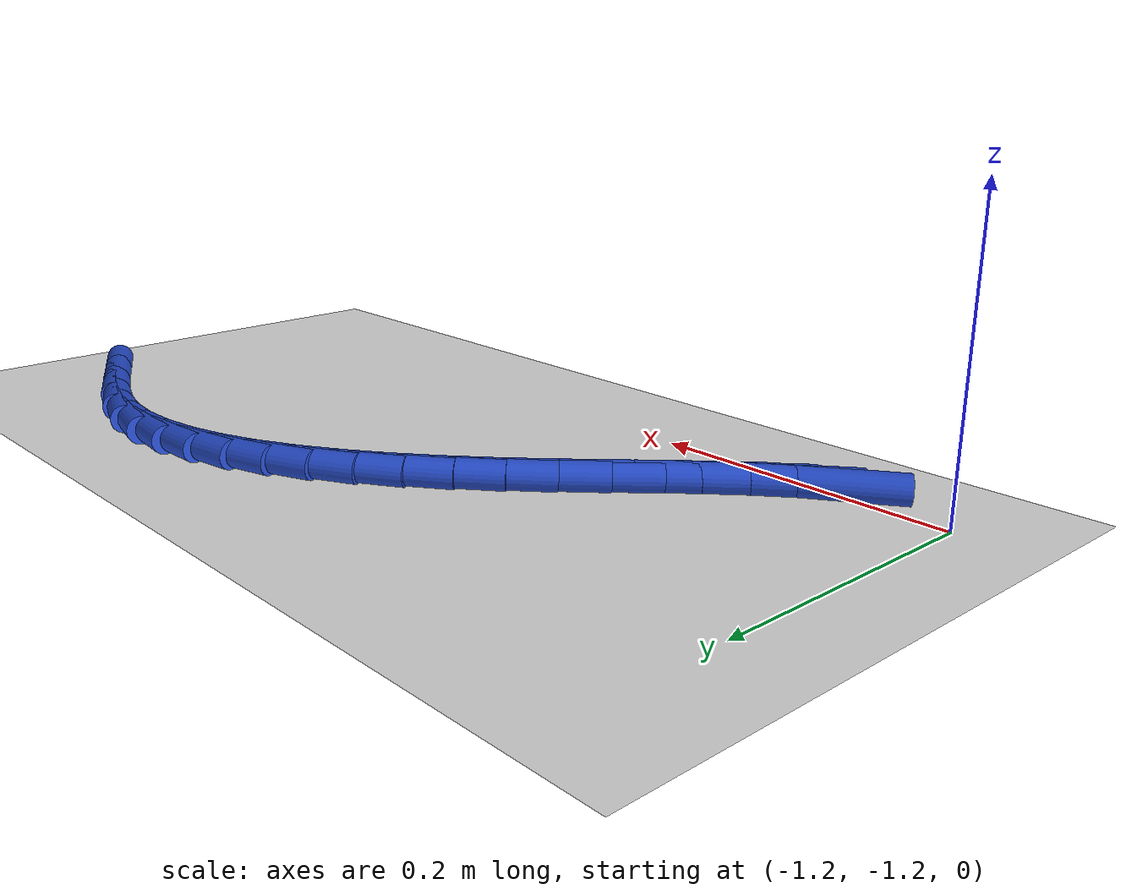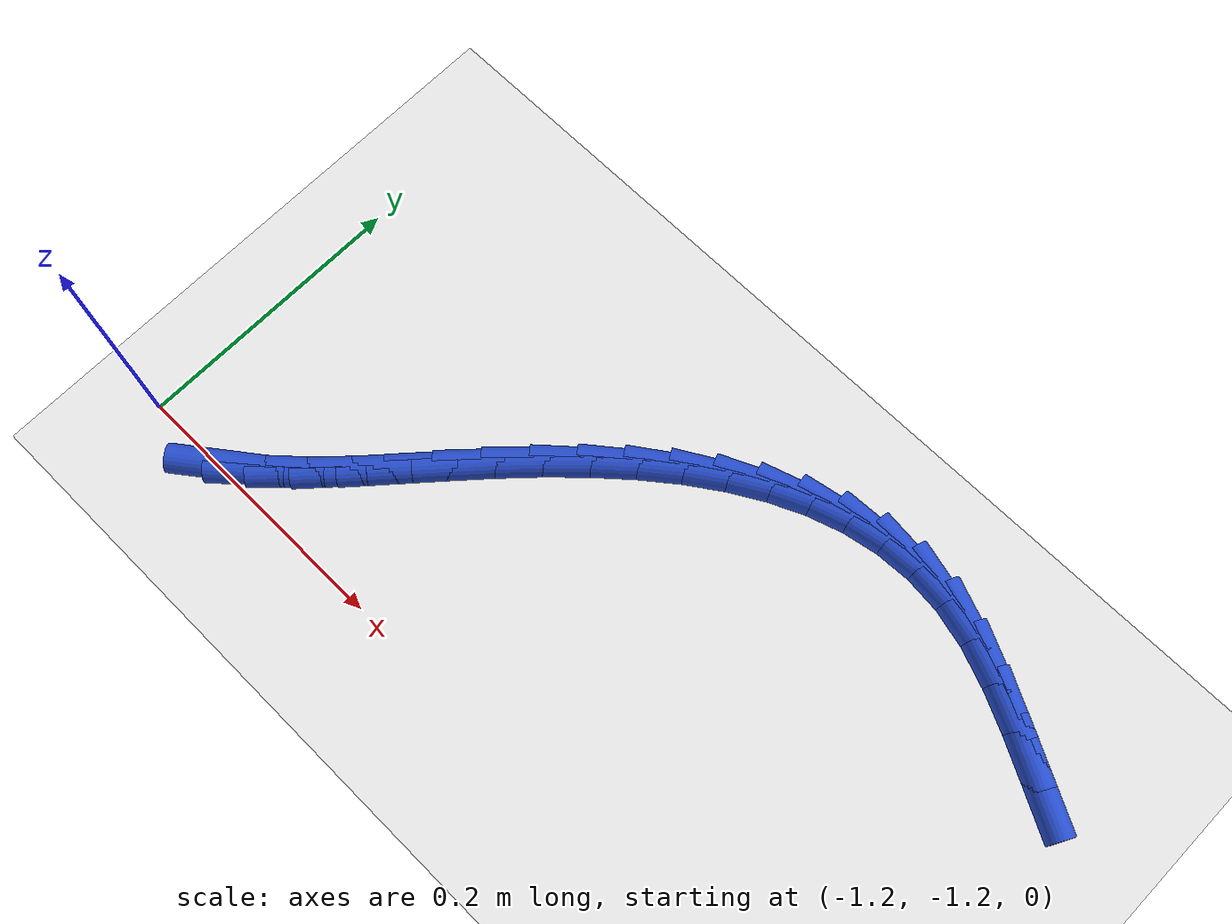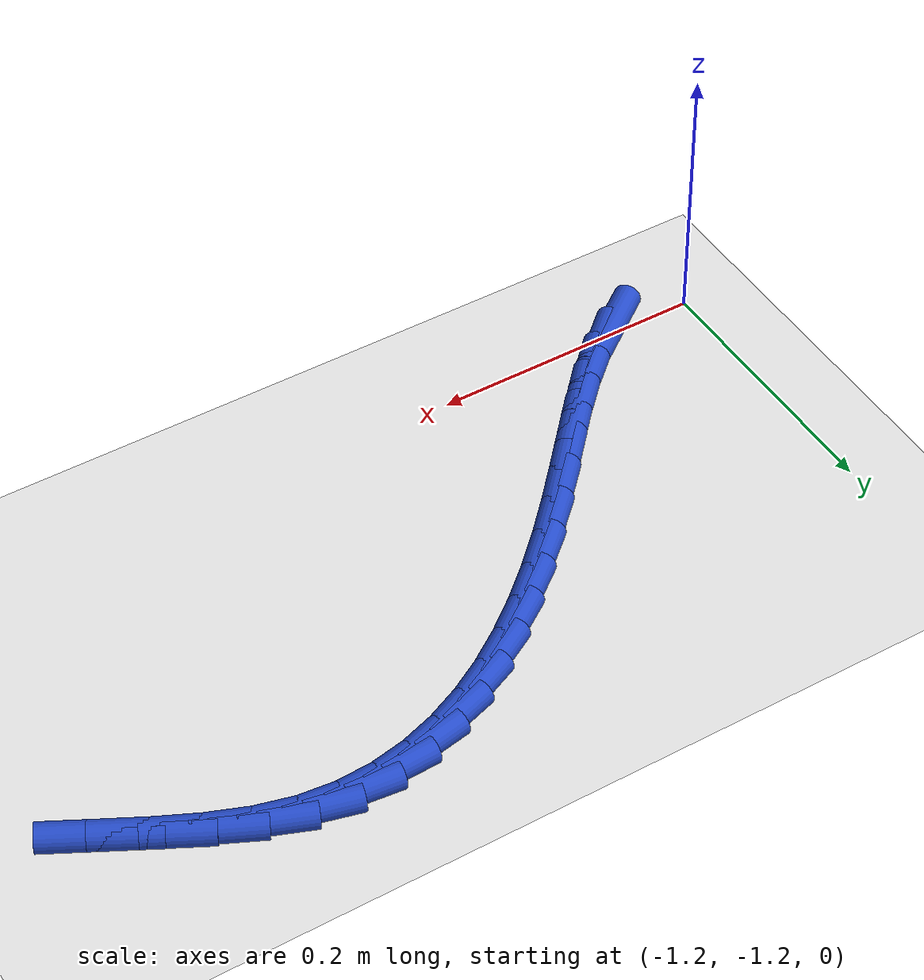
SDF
<sdf version="1.6">
 <world name="default">
  <model name="ground_plane">
   <static>1</static>
   <link name="link">
    <collision name="collision">
     <geometry><plane><normal>0 0 1</normal><size>100 100</size></plane></geometry>
     <surface><friction><ode><mu>100</mu><mu2>50</mu2></ode></friction></surface>
    </collision>
    <visual name="visual">
     <cast_shadows>0</cast_shadows>
     <geometry><plane><normal>0 0 1</normal><size>100 100</size></plane></geometry>
     <material>
      <script><uri>file://media/materials/scripts/gazebo.material</uri><name>Gazebo/WhiteGlow</name></script>
     </material>
    </visual>
   </link>
  </model>
  <model name="line">
   <link name="link_192">
    <pose>-1.1317236139662634 -1.195926932981841 0.01 0 1.57 0.6442935208970659</pose>
    <collision name="collision">
     <geometry><cylinder><radius>0.01</radius><length>0.08</length></cylinder></geometry>
    </collision>
    <visual name="visual">
     <material>
      <script><name>Gazebo/Blue</name><uri>file://media/materials/scripts/gazebo.material</uri></script>
     </material>
     <geometry><cylinder><radius>0.01</radius><length>0.08</length></cylinder></geometry>
    </visual>
   </link>
   <link name="link_193">
    <pose>-1.1111234197324644 -1.1804512661286024 0.01 0 1.57 0.7360104170196036</pose>
    <collision name="collision">
     <geometry><cylinder><radius>0.01</radius><length>0.08</length></cylinder></geometry>
    </collision>
    <visual name="visual">
     <material>
      <script><name>Gazebo/Blue</name><uri>file://media/materials/scripts/gazebo.material</uri></script>
     </material>
     <geometry><cylinder><radius>0.01</radius><length>0.08</length></cylinder></geometry>
    </visual>
   </link>
   <link name="link_194">
    <pose>-1.090669023330139 -1.1619236693573518 0.01 0 1.57 0.795024533852135</pose>
    <collision name="collision">
     <geometry><cylinder><radius>0.01</radius><length>0.08</length></cylinder></geometry>
    </collision>
    <visual name="visual">
     <material>
      <script><name>Gazebo/Blue</name><uri>file://media/materials/scripts/gazebo.material</uri></script>
     </material>
     <geometry><cylinder><radius>0.01</radius><length>0.08</length></cylinder></geometry>
    </visual>
   </link>
   <link name="link_195">
    <pose>-1.0702088067458697 -1.1410656962865688 0.01 0 1.57 0.828290826661319</pose>
    <collision name="collision">
     <geometry><cylinder><radius>0.01</radius><length>0.08</length></cylinder></geometry>
    </collision>
    <visual name="visual">
     <material>
      <script><name>Gazebo/Blue</name><uri>file://media/materials/scripts/gazebo.material</uri></script>
     </material>
     <geometry><cylinder><radius>0.01</radius><length>0.08</length></cylinder></geometry>
    </visual>
   </link>
   <link name="link_196">
    <pose>-1.04959115196624 -1.1185989005347328 0.01 0 1.57 0.8401606829295845</pose>
    <collision name="collision">
     <geometry><cylinder><radius>0.01</radius><length>0.08</length></cylinder></geometry>
    </collision>
    <visual name="visual">
     <material>
      <script><name>Gazebo/Blue</name><uri>file://media/materials/scripts/gazebo.material</uri></script>
     </material>
     <geometry><cylinder><radius>0.01</radius><length>0.08</length></cylinder></geometry>
    </visual>
   </link>
   <link name="link_197">
    <pose>-1.0286644409778332 -1.0952448357203233 0.01 0 1.57 0.8328470392498346</pose>
    <collision name="collision">
     <geometry><cylinder><radius>0.01</radius><length>0.08</length></cylinder></geometry>
    </collision>
    <visual name="visual">
     <material>
      <script><name>Gazebo/Blue</name><uri>file://media/materials/scripts/gazebo.material</uri></script>
     </material>
     <geometry><cylinder><radius>0.01</radius><length>0.08</length></cylinder></geometry>
    </visual>
   </link>
   <link name="link_198">
    <pose>-1.0072770557672326 -1.0717250554618207 0.01 0 1.57 0.8075171434356847</pose>
    <collision name="collision">
     <geometry><cylinder><radius>0.01</radius><length>0.08</length></cylinder></geometry>
    </collision>
    <visual name="visual">
     <material>
      <script><name>Gazebo/Blue</name><uri>file://media/materials/scripts/gazebo.material</uri></script>
     </material>
     <geometry><cylinder><radius>0.01</radius><length>0.08</length></cylinder></geometry>
    </visual>
   </link>
   <link name="link_199">
    <pose>-0.9852869228058225 -1.0487399539183357 0.01 0 1.57 0.7704454504755025</pose>
    <collision name="collision">
     <geometry><cylinder><radius>0.01</radius><length>0.08</length></cylinder></geometry>
    </collision>
    <visual name="visual">
     <material>
      <script><name>Gazebo/Blue</name><uri>file://media/materials/scripts/gazebo.material</uri></script>
     </material>
     <geometry><cylinder><radius>0.01</radius><length>0.08</length></cylinder></geometry>
    </visual>
   </link>
   <link name="link_200">
    <pose>-0.9626507914829285 -1.0267708417090498 0.01 0 1.57 0.7247091812714014</pose>
    <collision name="collision">
     <geometry><cylinder><radius>0.01</radius><length>0.08</length></cylinder></geometry>
    </collision>
    <visual name="visual">
     <material>
      <script><name>Gazebo/Blue</name><uri>file://media/materials/scripts/gazebo.material</uri></script>
     </material>
     <geometry><cylinder><radius>0.01</radius><length>0.08</length></cylinder></geometry>
    </visual>
   </link>
   <link name="link_201">
    <pose>-0.9393838433292845 -1.006169489457242 0.01 0 1.57 0.6690482887023105</pose>
    <collision name="collision">
     <geometry><cylinder><radius>0.01</radius><length>0.08</length></cylinder></geometry>
    </collision>
    <visual name="visual">
     <material>
      <script><name>Gazebo/Blue</name><uri>file://media/materials/scripts/gazebo.material</uri></script>
     </material>
     <geometry><cylinder><radius>0.01</radius><length>0.08</length></cylinder></geometry>
    </visual>
   </link>
   <link name="link_202">
    <pose>-0.9155020202306974 -0.9872859821318476 0.01 0 1.57 0.6018727562378557</pose>
    <collision name="collision">
     <geometry><cylinder><radius>0.01</radius><length>0.08</length></cylinder></geometry>
    </collision>
    <visual name="visual">
     <material>
      <script><name>Gazebo/Blue</name><uri>file://media/materials/scripts/gazebo.material</uri></script>
     </material>
     <geometry><cylinder><radius>0.01</radius><length>0.08</length></cylinder></geometry>
    </visual>
   </link>
   <link name="link_203">
    <pose>-0.8910212640729751 -0.9704704047018013 0.01 0 1.57 0.5214116296255582</pose>
    <collision name="collision">
     <geometry><cylinder><radius>0.01</radius><length>0.08</length></cylinder></geometry>
    </collision>
    <visual name="visual">
     <material>
      <script><name>Gazebo/Blue</name><uri>file://media/materials/scripts/gazebo.material</uri></script>
     </material>
     <geometry><cylinder><radius>0.01</radius><length>0.08</length></cylinder></geometry>
    </visual>
   </link>
   <link name="link_204">
    <pose>-0.8659575167419229 -0.9560728421360373 0.01 0 1.57 0.4259515083813995</pose>
    <collision name="collision">
     <geometry><cylinder><radius>0.01</radius><length>0.08</length></cylinder></geometry>
    </collision>
    <visual name="visual">
     <material>
      <script><name>Gazebo/Blue</name><uri>file://media/materials/scripts/gazebo.material</uri></script>
     </material>
     <geometry><cylinder><radius>0.01</radius><length>0.08</length></cylinder></geometry>
    </visual>
   </link>
   <link name="link_205">
    <pose>-0.8403267201233493 -0.9444433794034909 0.01 0 1.57 0.3143064851912914</pose>
    <collision name="collision">
     <geometry><cylinder><radius>0.01</radius><length>0.08</length></cylinder></geometry>
    </collision>
    <visual name="visual">
     <material>
      <script><name>Gazebo/Blue</name><uri>file://media/materials/scripts/gazebo.material</uri></script>
     </material>
     <geometry><cylinder><radius>0.01</radius><length>0.08</length></cylinder></geometry>
    </visual>
   </link>
   <link name="link_206">
    <pose>-0.8141448161030609 -0.9359321014730967 0.01 0 1.57 0.18656105231035205</pose>
    <collision name="collision">
     <geometry><cylinder><radius>0.01</radius><length>0.08</length></cylinder></geometry>
    </collision>
    <visual name="visual">
     <material>
      <script><name>Gazebo/Blue</name><uri>file://media/materials/scripts/gazebo.material</uri></script>
     </material>
     <geometry><cylinder><radius>0.01</radius><length>0.08</length></cylinder></geometry>
    </visual>
   </link>
   <link name="link_207">
    <pose>-0.7874277465668643 -0.93088909331379 0.01 0 1.57 0.04493376141829534</pose>
    <collision name="collision">
     <geometry><cylinder><radius>0.01</radius><length>0.08</length></cylinder></geometry>
    </collision>
    <visual name="visual">
     <material>
      <script><name>Gazebo/Blue</name><uri>file://media/materials/scripts/gazebo.material</uri></script>
     </material>
     <geometry><cylinder><radius>0.01</radius><length>0.08</length></cylinder></geometry>
    </visual>
   </link>
   <link name="link_208">
    <pose>-0.7601914534005668 -0.9296644398945046 0.01 0 1.57 -0.10572654656963192</pose>
    <collision name="collision">
     <geometry><cylinder><radius>0.01</radius><length>0.08</length></cylinder></geometry>
    </collision>
    <visual name="visual">
     <material>
      <script><name>Gazebo/Blue</name><uri>file://media/materials/scripts/gazebo.material</uri></script>
     </material>
     <geometry><cylinder><radius>0.01</radius><length>0.08</length></cylinder></geometry>
    </visual>
   </link>
   <link name="link_209">
    <pose>-0.7324518784899752 -0.9326082261841759 0.01 0 1.57 -0.257250148584275</pose>
    <collision name="collision">
     <geometry><cylinder><radius>0.01</radius><length>0.08</length></cylinder></geometry>
    </collision>
    <visual name="visual">
     <material>
      <script><name>Gazebo/Blue</name><uri>file://media/materials/scripts/gazebo.material</uri></script>
     </material>
     <geometry><cylinder><radius>0.01</radius><length>0.08</length></cylinder></geometry>
    </visual>
   </link>
   <link name="link_210">
    <pose>-0.7042326416834774 -0.9400321214224996 0.01 0 1.57 -0.37926216776672445</pose>
    <collision name="collision">
     <geometry><cylinder><radius>0.01</radius><length>0.08</length></cylinder></geometry>
    </collision>
    <visual name="visual">
     <material>
      <script><name>Gazebo/Blue</name><uri>file://media/materials/scripts/gazebo.material</uri></script>
     </material>
     <geometry><cylinder><radius>0.01</radius><length>0.08</length></cylinder></geometry>
    </visual>
   </link>
   <link name="link_211">
    <pose>-0.6757282551122763 -0.9513927566022128 0.01 0 1.57 -0.4551949615832155</pose>
    <collision name="collision">
     <geometry><cylinder><radius>0.01</radius><length>0.08</length></cylinder></geometry>
    </collision>
    <visual name="visual">
     <material>
      <script><name>Gazebo/Blue</name><uri>file://media/materials/scripts/gazebo.material</uri></script>
     </material>
     <geometry><cylinder><radius>0.01</radius><length>0.08</length></cylinder></geometry>
    </visual>
   </link>
   <link name="link_212">
    <pose>-0.6473010147966074 -0.9653072769301249 0.01 0 1.57 -0.4934894459750021</pose>
    <collision name="collision">
     <geometry><cylinder><radius>0.01</radius><length>0.08</length></cylinder></geometry>
    </collision>
    <visual name="visual">
     <material>
      <script><name>Gazebo/Blue</name><uri>file://media/materials/scripts/gazebo.material</uri></script>
     </material>
     <geometry><cylinder><radius>0.01</radius><length>0.08</length></cylinder></geometry>
    </visual>
   </link>
   <link name="link_213">
    <pose>-0.6193202729748604 -0.9803575227045883 0.01 0 1.57 -0.49794406170938066</pose>
    <collision name="collision">
     <geometry><cylinder><radius>0.01</radius><length>0.08</length></cylinder></geometry>
    </collision>
    <visual name="visual">
     <material>
      <script><name>Gazebo/Blue</name><uri>file://media/materials/scripts/gazebo.material</uri></script>
     </material>
     <geometry><cylinder><radius>0.01</radius><length>0.08</length></cylinder></geometry>
    </visual>
   </link>
  </model>
 </world>
</sdf>
